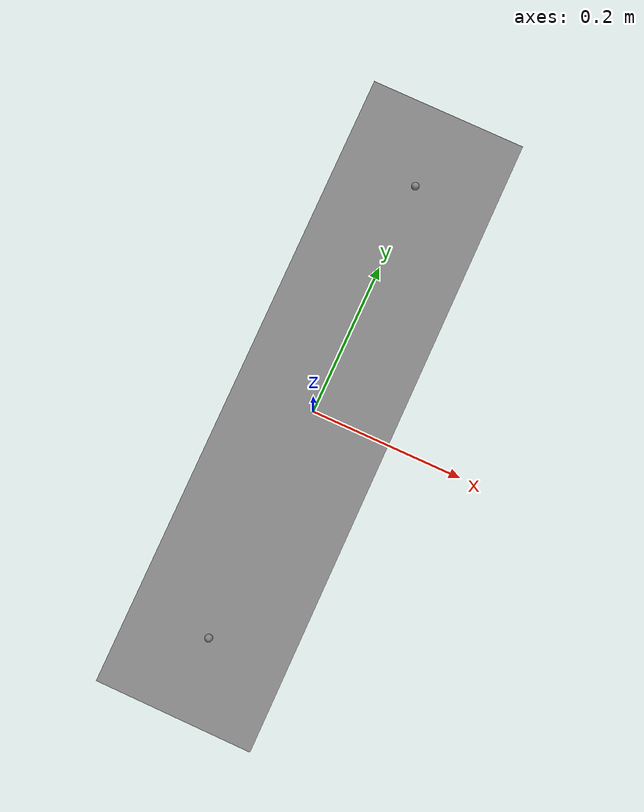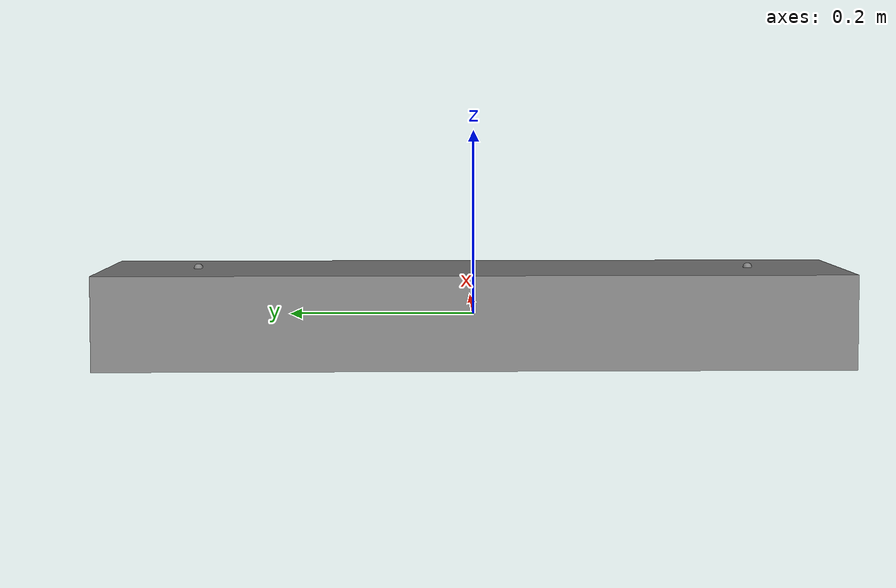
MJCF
<!-- Actuates nothing: every mode group in a scene of arms attached here is an attachment's. -->
<mujoco model="arm_mount">
  <worldbody>
    <body name="mount">
      <geom type="box" size="0.1 0.4 0.05" mass="10"/>
      <site name="left_mount" pos="0 0.3 0.05"/>
      <site name="right_mount" pos="0 -0.3 0.05"/>
    </body>
  </worldbody>
</mujoco>
